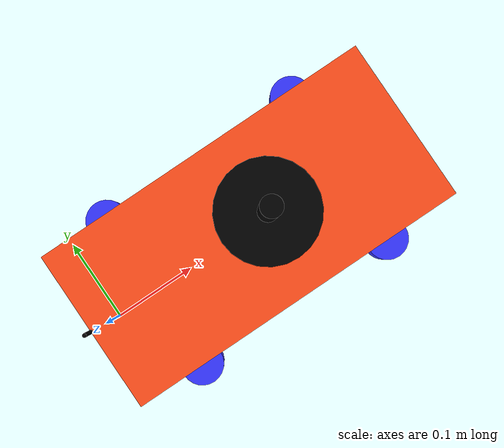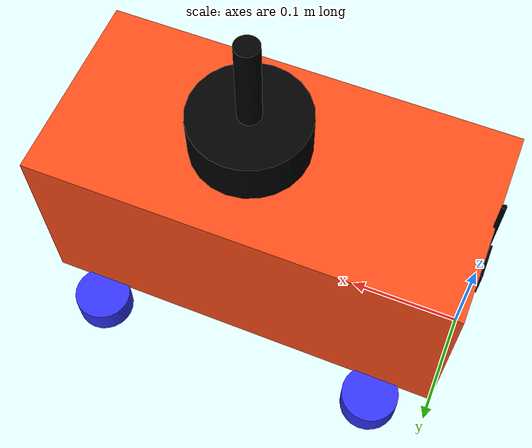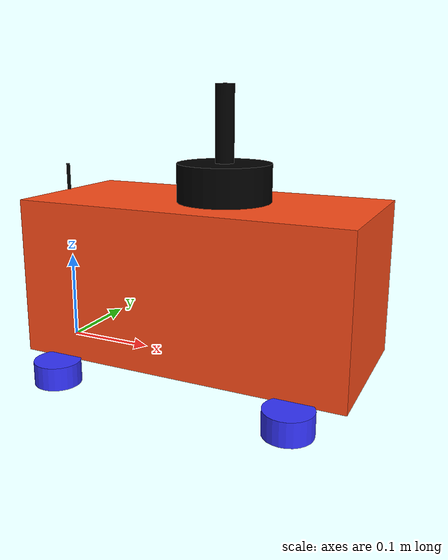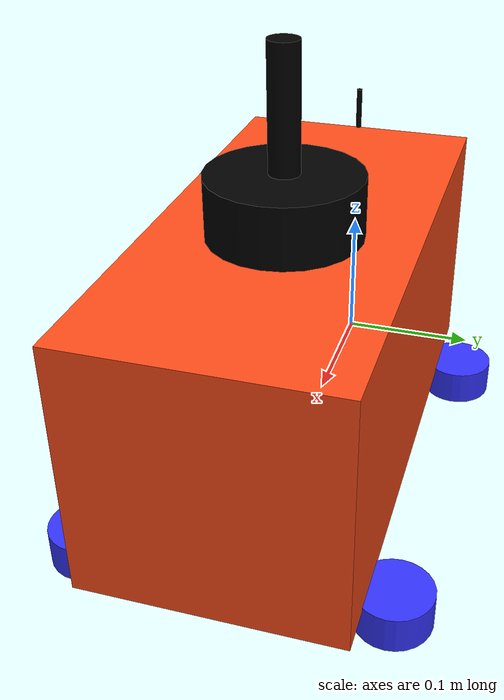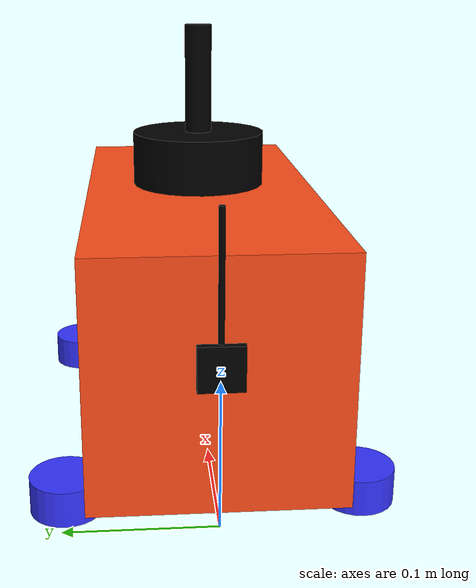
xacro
<?xml version="1.0"?>
<robot xmlns:xacro="http://www.ros.org/wiki/xacro"  name="robot">

    <xacro:include filename="robot_core.xacro" />

    <!--xacro:include filename="ros2_control.xacro" /-->
    <xacro:include filename="lidar.xacro" />
    <xacro:include filename="camera.xacro" />

</robot>

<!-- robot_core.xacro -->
<robot xmlns:xacro="http://www.ros.org/wiki/xacro" >

    <xacro:property name="chassis_length" value="0.360"/>
    <xacro:property name="chassis_width" value="0.170"/>
    <xacro:property name="chassis_height" value="0.170"/>
    <xacro:property name="chassis_mass" value="1.0"/>

    <xacro:property name="wheel_radius" value="0.025"/>
    <xacro:property name="wheel_thickness" value="0.025"/>
    <xacro:property name="wheel_mass" value="0.05"/>

    <xacro:property name="front_wheel_offset_x" value="0.05"/>
    <xacro:property name="front_wheel_offset_y" value="0.1"/>
    <xacro:property name="front_wheel_offset_z" value="0.01"/>

    <xacro:property name="back_wheel_offset_x" value="0.310"/>

    <material name="white">
        <color rgba="1 1 1 1" />
    </material>

    <material name="orange">
        <color rgba="1 0.3 0.1 1"/>
    </material>

    <material name="blue">
        <color rgba="0.2 0.2 1 1"/>
    </material>

    <material name="black">
        <color rgba="0 0 0 1"/>
    </material>

    <material name="red">
        <color rgba="1 0 0 1"/>
    </material>

    <!-- BASE LINK -->

    <link name="base_link"></link>

    <!-- BASE_FOOTPRINT LINK -->

    <joint name="base_footprint_joint" type="fixed">
        <parent link="base_link"/>
        <child link="base_footprint"/>
        <origin xyz="0 0 0" rpy="0 0 0"/>
    </joint>

    <link name="base_footprint">
    </link>

    <!-- CHASSIS LINK -->

    <joint name="chassis_joint" type="fixed">
        <parent link="base_link"/>
        <child link="chassis"/>
        <origin xyz="0 0 ${front_wheel_offset_z}"/>
    </joint>

    <link name="chassis">
        <visual>
            <origin xyz="${chassis_length/2} 0 ${chassis_height/2}"/>
            <geometry>
                <box size="${chassis_length} ${chassis_width} ${chassis_height}"/>
            </geometry>
            <material name="orange"/>
        </visual>
        <collision>
            <origin xyz="${chassis_length/2} 0 ${chassis_height/2}"/>
            <geometry>
                <box size="${chassis_length} ${chassis_width} ${chassis_height}"/>
            </geometry>
        </collision>
    </link>

    <!-- FRONT LEFT WHEEL LINK -->

    <joint name="front_left_wheel_joint" type="continuous">
        <parent link="base_link"/>
        <child link="front_left_wheel"/>
        <origin xyz="${front_wheel_offset_x} ${-front_wheel_offset_y} 0" rpy="${pi} 0 ${pi}" />
        <axis xyz="0 0 1"/>
    </joint>

    <link name="front_left_wheel">
        <visual>
            <geometry>
                <cylinder radius="${wheel_radius}" length="${wheel_thickness}"/>
            </geometry>
            <material name="blue"/>
        </visual>
        <collision>
            <geometry>
                <sphere radius="${wheel_radius}"/>
            </geometry>
        </collision>
    </link>

    <!-- FRONT RIGHT WHEEL LINK -->

    <joint name="front_right_wheel_joint" type="continuous">
        <parent link="base_link"/>
        <child link="front_right_wheel"/>
        <origin xyz="${front_wheel_offset_x} ${front_wheel_offset_y} 0" rpy="${pi} 0 ${pi}" />
        <axis xyz="0 0 -1"/>
    </joint>

    <link name="front_right_wheel">
        <visual>
            <geometry>
                <cylinder radius="${wheel_radius}" length="${wheel_thickness}"/>
            </geometry>
            <material name="blue"/>
        </visual>
        <collision>
            <geometry>
                <sphere radius="${wheel_radius}"/>
            </geometry>
        </collision>
    </link>

    <!-- BACK LEFT WHEEL LINK -->
    <joint name="back_left_wheel_joint" type="continuous">
        <parent link="base_link"/>
        <child link="back_left_wheel"/>
        <origin xyz="${back_wheel_offset_x} ${-front_wheel_offset_y} 0" rpy="${pi} 0 ${pi}" />
        <axis xyz="0 0 1"/>
    </joint>

    <link name="back_left_wheel">
        <visual>
            <geometry>
                <cylinder radius="${wheel_radius}" length="${wheel_thickness}"/>
            </geometry>
            <material name="blue"/>
        </visual>
        <collision>
            <geometry>
                <sphere radius="${wheel_radius}"/>
            </geometry>
        </collision>
    </link>

    <!-- BACK RIGHT WHEEL LINK -->
    <joint name="back_right_wheel_joint" type="continuous">
        <parent link="base_link"/>
        <child link="back_right_wheel"/>
        <origin xyz="${back_wheel_offset_x} ${front_wheel_offset_y} 0" rpy="${pi} 0 ${pi}" />
        <axis xyz="0 0 -1"/>
    </joint>

    <link name="back_right_wheel">
        <visual>
            <geometry>
                <cylinder radius="${wheel_radius}" length="${wheel_thickness}"/>
            </geometry>
            <material name="blue"/>
        </visual>
        <collision>
            <geometry>
                <sphere radius="${wheel_radius}"/>
            </geometry>
        </collision>
    </link>

</robot>

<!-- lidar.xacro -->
<robot xmlns:xacro="http://www.ros.org/wiki/xacro" >

    <joint name="laser_joint" type="fixed">
        <parent link="chassis"/>
        <child link="laser_frame"/>
        <!-- Flip left/right and front/back by combining rotations -->
        <origin xyz="0.2 0 0.19" rpy="${pi} 0 ${pi}"/>
    </joint>

    <link name="laser_frame">
        <visual>
            <geometry>
                <cylinder radius="0.05" length="0.04"/>
            </geometry>
            <material name="black"/>
        </visual>
        <visual>
            <origin xyz="0 0 -0.05"/>
            <geometry>
                <cylinder radius="0.01" length="0.1"/>
            </geometry>
            <material name="black"/>
        </visual>
        <collision>
            <geometry>
                <cylinder radius="0.05" length="0.04"/>
            </geometry>
        </collision>
    </link>
</robot>

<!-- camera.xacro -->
<robot xmlns:xacro="http://www.ros.org/wiki/xacro" >

    <joint name="camera_joint" type="fixed">
        <parent link="chassis"/>
        <child link="camera_link"/>
        <origin xyz="0 0 0.1" rpy="${pi} 0 ${pi}"/>
    </joint>

    <link name="camera_link">
        <visual>
            <geometry>
                <box size="0.010 0.03 0.03"/>
            </geometry>
            <material name="black"/>
        </visual>
        <visual>
            <origin xyz="0 0 -0.05"/>
            <geometry>
                <cylinder radius="0.002" length="0.1"/>
            </geometry>
            <material name="black"/>
        </visual>
    </link>

    <joint name="camera_optical_joint" type="fixed">
        <parent link="camera_link"/>
        <child link="camera_link_optical"/>
        <origin xyz="0 0 0" rpy="${pi} 0 ${pi}"/>
    </joint>

    <link name="camera_link_optical"></link>
</robot>
